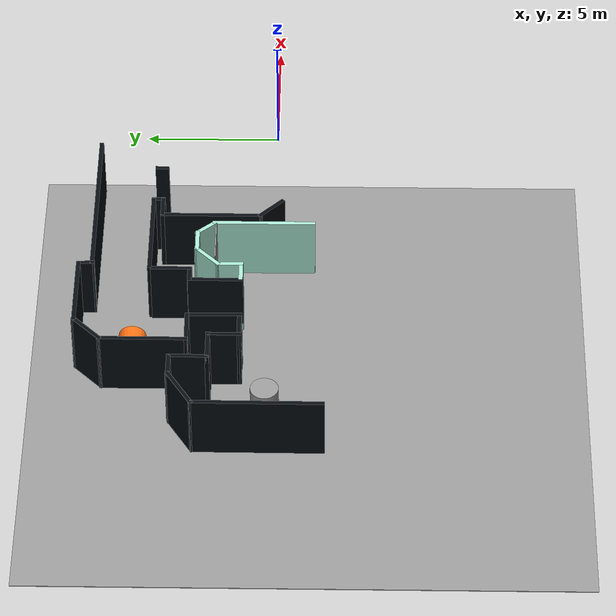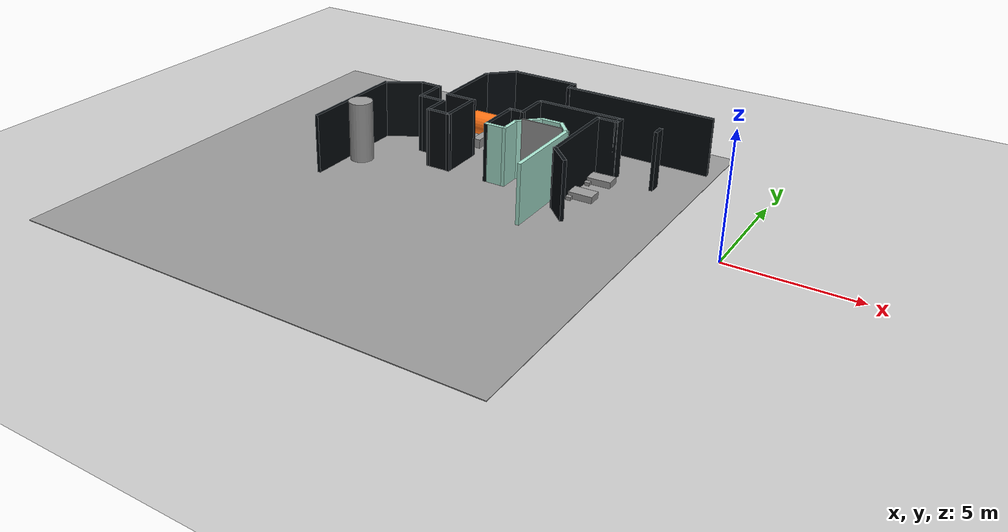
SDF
<sdf version="1.7">
 <world name="default">
  <model name="ground_plane">
   <static>1</static>
   <link name="link">
    <collision name="collision">
     <geometry><plane><normal>0 0 1</normal><size>100 100</size></plane></geometry>
     <surface><friction><ode><mu>100</mu><mu2>50</mu2></ode></friction></surface>
    </collision>
    <visual name="visual">
     <cast_shadows>0</cast_shadows>
     <geometry><plane><normal>0 0 1</normal><size>100 100</size></plane></geometry>
     <material>
      <script><uri>file://media/materials/scripts/gazebo.material</uri><name>Gazebo/Grey</name></script>
      <ambient>0.55 0.55 0.53 1</ambient>
      <diffuse>0.55 0.55 0.53 1</diffuse>
      <specular>0.08 0.08 0.08 1</specular>
      <emissive>0 0 0 1</emissive>
     </material>
    </visual>
   </link>
  </model>
  <model name="among_us_world">
   <pose>0.133216 -0.12311 0 0 -0 0</pose>
   <link name="Wall_101">
    <collision name="Wall_101_Collision">
     <geometry><box><size>3.75 0.15 2.5</size></box></geometry>
     <pose>0 0 1.25 0 -0 0</pose>
    </collision>
    <visual name="Wall_101_Visual">
     <pose>0 0 1.25 0 -0 0</pose>
     <geometry><box><size>3.75 0.15 2.5</size></box></geometry>
     <material>
      <script><uri>file://media/materials/scripts/gazebo.material</uri><name>Gazebo/Motorway</name></script>
      <ambient>0.025 0.045 0.06 1</ambient>
      <diffuse>0.025 0.045 0.06 1</diffuse>
      <specular>0.08 0.08 0.08 1</specular>
      <emissive>0 0 0 1</emissive>
     </material>
     <meta><layer>0</layer></meta>
    </visual>
    <pose>-6.98451 2.43054 0 0 -0 -1.5708</pose>
   </link>
   <link name="Wall_103">
    <collision name="Wall_103_Collision">
     <geometry><box><size>1.25 0.15 2.5</size></box></geometry>
     <pose>0 0 1.25 0 -0 0</pose>
    </collision>
    <visual name="Wall_103_Visual">
     <pose>0 0 1.25 0 -0 0</pose>
     <geometry><box><size>1.25 0.15 2.5</size></box></geometry>
     <material>
      <script><uri>file://media/materials/scripts/gazebo.material</uri><name>Gazebo/Motorway</name></script>
      <ambient>0.025 0.045 0.06 1</ambient>
      <diffuse>0.025 0.045 0.06 1</diffuse>
      <specular>0.08 0.08 0.08 1</specular>
      <emissive>0 0 0 1</emissive>
     </material>
     <meta><layer>0</layer></meta>
    </visual>
    <pose>-6.5956 0.241636 0 0 -0 -0.785398</pose>
   </link>
   <link name="Wall_110">
    <collision name="Wall_110_Collision">
     <geometry><box><size>0.5 0.15 2.5</size></box></geometry>
     <pose>0 0 1.25 0 -0 0</pose>
    </collision>
    <visual name="Wall_110_Visual">
     <pose>0 0 1.25 0 -0 0</pose>
     <geometry><box><size>0.5 0.15 2.5</size></box></geometry>
     <material>
      <script><uri>file://media/materials/scripts/gazebo.material</uri><name>Gazebo/Motorway</name></script>
      <ambient>0.025 0.045 0.06 1</ambient>
      <diffuse>0.025 0.045 0.06 1</diffuse>
      <specular>0.08 0.08 0.08 1</specular>
      <emissive>0 0 0 1</emissive>
     </material>
     <meta><layer>0</layer></meta>
    </visual>
    <pose>-4.46462 4.33852 0 0 -0 1.5708</pose>
   </link>
   <link name="Wall_169">
    <collision name="Wall_169_Collision">
     <geometry><box><size>3.75 0.15 2.5</size></box></geometry>
     <pose>0 0 1.25 0 -0 0</pose>
    </collision>
    <visual name="Wall_169_Visual">
     <pose>0 0 1.25 0 -0 0</pose>
     <geometry><box><size>3.75 0.15 2.5</size></box></geometry>
     <material>
      <script><uri>file://media/materials/scripts/gazebo.material</uri><name>Gazebo/Motorway</name></script>
      <ambient>0.66 0.90 0.82 1</ambient>
      <diffuse>0.66 0.90 0.82 1</diffuse>
      <specular>0.08 0.08 0.08 1</specular>
      <emissive>0 0 0 1</emissive>
     </material>
     <meta><layer>0</layer></meta>
    </visual>
    <pose>-7.39091 0.495094 0 0 -0 1.5708</pose>
   </link>
   <link name="Wall_170">
    <collision name="Wall_170_Collision">
     <geometry><box><size>0.93677 0.15 2.5</size></box></geometry>
     <pose>0 0 1.25 0 -0 0</pose>
    </collision>
    <visual name="Wall_170_Visual">
     <pose>0 0 1.25 0 -0 0</pose>
     <geometry><box><size>0.93677 0.15 2.5</size></box></geometry>
     <material>
      <script><uri>file://media/materials/scripts/gazebo.material</uri><name>Gazebo/Motorway</name></script>
      <ambient>0.66 0.90 0.82 1</ambient>
      <diffuse>0.66 0.90 0.82 1</diffuse>
      <specular>0.08 0.08 0.08 1</specular>
      <emissive>0 0 0 1</emissive>
     </material>
     <meta><layer>0</layer></meta>
    </visual>
    <pose>-7.66031 2.59561 0 0 -0 2.2722</pose>
   </link>
   <link name="Wall_171">
    <collision name="Wall_171_Collision">
     <geometry><box><size>1 0.15 2.5</size></box></geometry>
     <pose>0 0 1.25 0 -0 0</pose>
    </collision>
    <visual name="Wall_171_Visual">
     <pose>0 0 1.25 0 -0 0</pose>
     <geometry><box><size>1 0.15 2.5</size></box></geometry>
     <material>
      <script><uri>file://media/materials/scripts/gazebo.material</uri><name>Gazebo/Motorway</name></script>
      <ambient>0.66 0.90 0.82 1</ambient>
      <diffuse>0.66 0.90 0.82 1</diffuse>
      <specular>0.08 0.08 0.08 1</specular>
      <emissive>0 0 0 1</emissive>
     </material>
     <meta><layer>0</layer></meta>
    </visual>
    <pose>-8.33916 2.89614 0 0 -0 3.14159</pose>
   </link>
   <link name="Wall_172">
    <collision name="Wall_172_Collision">
     <geometry><box><size>1.25 0.15 2.5</size></box></geometry>
     <pose>0 0 1.25 0 -0 0</pose>
    </collision>
    <visual name="Wall_172_Visual">
     <pose>0 0 1.25 0 -0 0</pose>
     <geometry><box><size>1.25 0.15 2.5</size></box></geometry>
     <material>
      <script><uri>file://media/materials/scripts/gazebo.material</uri><name>Gazebo/Motorway</name></script>
      <ambient>0.66 0.90 0.82 1</ambient>
      <diffuse>0.66 0.90 0.82 1</diffuse>
      <specular>0.08 0.08 0.08 1</specular>
      <emissive>0 0 0 1</emissive>
     </material>
     <meta><layer>0</layer></meta>
    </visual>
    <pose>-9.15307 2.50723 0 0 -0 -2.35619</pose>
   </link>
   <link name="Wall_173">
    <collision name="Wall_173_Collision">
     <geometry><box><size>1 0.15 2.5</size></box></geometry>
     <pose>0 0 1.25 0 -0 0</pose>
    </collision>
    <visual name="Wall_173_Visual">
     <pose>0 0 1.25 0 -0 0</pose>
     <geometry><box><size>1 0.15 2.5</size></box></geometry>
     <material>
      <script><uri>file://media/materials/scripts/gazebo.material</uri><name>Gazebo/Motorway</name></script>
      <ambient>0.66 0.90 0.82 1</ambient>
      <diffuse>0.66 0.90 0.82 1</diffuse>
      <specular>0.08 0.08 0.08 1</specular>
      <emissive>0 0 0 1</emissive>
     </material>
     <meta><layer>0</layer></meta>
    </visual>
    <pose>-9.54198 1.69332 0 0 -0 -1.5708</pose>
   </link>
   <link name="Wall_174">
    <collision name="Wall_174_Collision">
     <geometry><box><size>0.969112 0.15 2.5</size></box></geometry>
     <pose>0 0 1.25 0 -0 0</pose>
    </collision>
    <visual name="Wall_174_Visual">
     <pose>0 0 1.25 0 -0 0</pose>
     <geometry><box><size>0.969112 0.15 2.5</size></box></geometry>
     <material>
      <script><uri>file://media/materials/scripts/gazebo.material</uri><name>Gazebo/Motorway</name></script>
      <ambient>0.66 0.90 0.82 1</ambient>
      <diffuse>0.66 0.90 0.82 1</diffuse>
      <specular>0.08 0.08 0.08 1</specular>
      <emissive>0 0 0 1</emissive>
     </material>
     <meta><layer>0</layer></meta>
    </visual>
    <pose>-9.95154 1.26832 0 0 -0 -3.14159</pose>
   </link>
   <link name="Wall_175">
    <collision name="Wall_175_Collision">
     <geometry><box><size>2 0.15 2.5</size></box></geometry>
     <pose>0 0 1.25 0 -0 0</pose>
    </collision>
    <visual name="Wall_175_Visual">
     <pose>0 0 1.25 0 -0 0</pose>
     <geometry><box><size>2 0.15 2.5</size></box></geometry>
     <material>
      <script><uri>file://media/materials/scripts/gazebo.material</uri><name>Gazebo/Motorway</name></script>
      <ambient>0.025 0.045 0.06 1</ambient>
      <diffuse>0.025 0.045 0.06 1</diffuse>
      <specular>0.08 0.08 0.08 1</specular>
      <emissive>0 0 0 1</emissive>
     </material>
     <meta><layer>0</layer></meta>
    </visual>
    <pose>-10.3611 2.17994 0 0 -0 1.5708</pose>
   </link>
   <link name="Wall_176">
    <collision name="Wall_176_Collision">
     <geometry><box><size>0.719112 0.15 2.5</size></box></geometry>
     <pose>0 0 1.25 0 -0 0</pose>
    </collision>
    <visual name="Wall_176_Visual">
     <pose>0 0 1.25 0 -0 0</pose>
     <geometry><box><size>0.719112 0.15 2.5</size></box></geometry>
     <material>
      <script><uri>file://media/materials/scripts/gazebo.material</uri><name>Gazebo/Motorway</name></script>
      <ambient>0.025 0.045 0.06 1</ambient>
      <diffuse>0.025 0.045 0.06 1</diffuse>
      <specular>0.08 0.08 0.08 1</specular>
      <emissive>0 0 0 1</emissive>
     </material>
     <meta><layer>0</layer></meta>
    </visual>
    <pose>-10.0765 3.11832 0 0 -0 0</pose>
   </link>
   <link name="Wall_177">
    <collision name="Wall_177_Collision">
     <geometry><box><size>1.5 0.15 2.5</size></box></geometry>
     <pose>0 0 1.25 0 -0 0</pose>
    </collision>
    <visual name="Wall_177_Visual">
     <pose>0 0 1.25 0 -0 0</pose>
     <geometry><box><size>1.5 0.15 2.5</size></box></geometry>
     <material>
      <script><uri>file://media/materials/scripts/gazebo.material</uri><name>Gazebo/Motorway</name></script>
      <ambient>0.025 0.045 0.06 1</ambient>
      <diffuse>0.025 0.045 0.06 1</diffuse>
      <specular>0.08 0.08 0.08 1</specular>
      <emissive>0 0 0 1</emissive>
     </material>
     <meta><layer>0</layer></meta>
    </visual>
    <pose>-9.79198 3.79332 0 0 -0 1.5708</pose>
   </link>
   <link name="Wall_208">
    <collision name="Wall_208_Collision">
     <geometry><box><size>1.25 0.15 2.5</size></box></geometry>
     <pose>0 0 1.25 0 -0 0</pose>
    </collision>
    <visual name="Wall_208_Visual">
     <pose>0 0 1.25 0 -0 0</pose>
     <geometry><box><size>1.25 0.15 2.5</size></box></geometry>
     <material>
      <script><uri>file://media/materials/scripts/gazebo.material</uri><name>Gazebo/Motorway</name></script>
      <ambient>0.025 0.045 0.06 1</ambient>
      <diffuse>0.025 0.045 0.06 1</diffuse>
      <specular>0.08 0.08 0.08 1</specular>
      <emissive>0 0 0 1</emissive>
     </material>
     <meta><layer>0</layer></meta>
    </visual>
    <pose>-13.1077 1.80265 0 0 -0 -1.57068</pose>
   </link>
   <link name="Wall_209">
    <collision name="Wall_209_Collision">
     <geometry><box><size>1.11978 0.15 2.5</size></box></geometry>
     <pose>0 0 1.25 0 -0 0</pose>
    </collision>
    <visual name="Wall_209_Visual">
     <pose>0 0 1.25 0 -0 0</pose>
     <geometry><box><size>1.11978 0.15 2.5</size></box></geometry>
     <material>
      <script><uri>file://media/materials/scripts/gazebo.material</uri><name>Gazebo/Motorway</name></script>
      <ambient>0.025 0.045 0.06 1</ambient>
      <diffuse>0.025 0.045 0.06 1</diffuse>
      <specular>0.08 0.08 0.08 1</specular>
      <emissive>0 0 0 1</emissive>
     </material>
     <meta><layer>0</layer></meta>
    </visual>
    <pose>-12.6228 1.25736 0 0 -0 0.009865</pose>
   </link>
   <link name="Wall_31">
    <collision name="Wall_31_Collision">
     <geometry><box><size>6.5 0.15 2.5</size></box></geometry>
     <pose>0 0 1.25 0 -0 0</pose>
    </collision>
    <visual name="Wall_31_Visual">
     <pose>0 0 1.25 0 -0 0</pose>
     <geometry><box><size>6.5 0.15 2.5</size></box></geometry>
     <material>
      <script><uri>file://media/materials/scripts/gazebo.material</uri><name>Gazebo/Motorway</name></script>
      <ambient>0.025 0.045 0.06 1</ambient>
      <diffuse>0.025 0.045 0.06 1</diffuse>
      <specular>0.08 0.08 0.08 1</specular>
      <emissive>0 0 0 1</emissive>
     </material>
     <meta><layer>0</layer></meta>
    </visual>
    <pose>-6.36249 6.66662 0 0 -0 3.14159</pose>
   </link>
   <link name="Wall_32">
    <collision name="Wall_32_Collision">
     <geometry><box><size>0.656345 0.15 2.5</size></box></geometry>
     <pose>0 0 1.25 0 -0 0</pose>
    </collision>
    <visual name="Wall_32_Visual">
     <pose>0 0 1.25 0 -0 0</pose>
     <geometry><box><size>0.656345 0.15 2.5</size></box></geometry>
     <material>
      <script><uri>file://media/materials/scripts/gazebo.material</uri><name>Gazebo/Motorway</name></script>
      <ambient>0.025 0.045 0.06 1</ambient>
      <diffuse>0.025 0.045 0.06 1</diffuse>
      <specular>0.08 0.08 0.08 1</specular>
      <emissive>0 0 0 1</emissive>
     </material>
     <meta><layer>0</layer></meta>
    </visual>
    <pose>-9.54527 6.90412 0 0 -0 1.60153</pose>
   </link>
   <link name="Wall_33">
    <collision name="Wall_33_Collision">
     <geometry><box><size>3 0.15 2.5</size></box></geometry>
     <pose>0 0 1.25 0 -0 0</pose>
    </collision>
    <visual name="Wall_33_Visual">
     <pose>0 0 1.25 0 -0 0</pose>
     <geometry><box><size>3 0.15 2.5</size></box></geometry>
     <material>
      <script><uri>file://media/materials/scripts/gazebo.material</uri><name>Gazebo/Motorway</name></script>
      <ambient>0.025 0.045 0.06 1</ambient>
      <diffuse>0.025 0.045 0.06 1</diffuse>
      <specular>0.08 0.08 0.08 1</specular>
      <emissive>0 0 0 1</emissive>
     </material>
     <meta><layer>0</layer></meta>
    </visual>
    <pose>-10.978 7.15717 0 0 -0 3.14159</pose>
   </link>
   <link name="Wall_34">
    <collision name="Wall_34_Collision">
     <geometry><box><size>1.5 0.15 2.5</size></box></geometry>
     <pose>0 0 1.25 0 -0 0</pose>
    </collision>
    <visual name="Wall_34_Visual">
     <pose>0 0 1.25 0 -0 0</pose>
     <geometry><box><size>1.5 0.15 2.5</size></box></geometry>
     <material>
      <script><uri>file://media/materials/scripts/gazebo.material</uri><name>Gazebo/Motorway</name></script>
      <ambient>0.025 0.045 0.06 1</ambient>
      <diffuse>0.025 0.045 0.06 1</diffuse>
      <specular>0.08 0.08 0.08 1</specular>
      <emissive>0 0 0 1</emissive>
     </material>
     <meta><layer>0</layer></meta>
    </visual>
    <pose>-12.8803 6.67987 0 0 -0 -2.35619</pose>
   </link>
   <link name="Wall_35">
    <collision name="Wall_35_Collision">
     <geometry><box><size>3.21889 0.15 2.5</size></box></geometry>
     <pose>0 0 1.25 0 -0 0</pose>
    </collision>
    <visual name="Wall_35_Visual">
     <pose>0 0 1.25 0 -0 0</pose>
     <geometry><box><size>3.21889 0.15 2.5</size></box></geometry>
     <material>
      <script><uri>file://media/materials/scripts/gazebo.material</uri><name>Gazebo/Motorway</name></script>
      <ambient>0.025 0.045 0.06 1</ambient>
      <diffuse>0.025 0.045 0.06 1</diffuse>
      <specular>0.08 0.08 0.08 1</specular>
      <emissive>0 0 0 1</emissive>
     </material>
     <meta><layer>0</layer></meta>
    </visual>
    <pose>-13.3576 4.66813 0 0 -0 -1.5708</pose>
   </link>
   <link name="Wall_36">
    <collision name="Wall_36_Collision">
     <geometry><box><size>1.35468 0.15 2.5</size></box></geometry>
     <pose>0 0 1.25 0 -0 0</pose>
    </collision>
    <visual name="Wall_36_Visual">
     <pose>0 0 1.25 0 -0 0</pose>
     <geometry><box><size>1.35468 0.15 2.5</size></box></geometry>
     <material>
      <script><uri>file://media/materials/scripts/gazebo.material</uri><name>Gazebo/Motorway</name></script>
      <ambient>0.025 0.045 0.06 1</ambient>
      <diffuse>0.025 0.045 0.06 1</diffuse>
      <specular>0.08 0.08 0.08 1</specular>
      <emissive>0 0 0 1</emissive>
     </material>
     <meta><layer>0</layer></meta>
    </visual>
    <pose>-12.7556 3.12401 0 0 -0 0.009756</pose>
   </link>
   <link name="Wall_37">
    <collision name="Wall_37_Collision">
     <geometry><box><size>2.0178 0.15 2.5</size></box></geometry>
     <pose>0 0 1.25 0 -0 0</pose>
    </collision>
    <visual name="Wall_37_Visual">
     <pose>0 0 1.25 0 -0 0</pose>
     <geometry><box><size>2.0178 0.15 2.5</size></box></geometry>
     <material>
      <script><uri>file://media/materials/scripts/gazebo.material</uri><name>Gazebo/Motorway</name></script>
      <ambient>0.025 0.045 0.06 1</ambient>
      <diffuse>0.025 0.045 0.06 1</diffuse>
      <specular>0.08 0.08 0.08 1</specular>
      <emissive>0 0 0 1</emissive>
     </material>
     <meta><layer>0</layer></meta>
    </visual>
    <pose>-12.1457 2.18046 0 0 -0 -1.56247</pose>
   </link>
   <link name="Wall_40">
    <collision name="Wall_40_Collision">
     <geometry><box><size>1.25 0.15 2.5</size></box></geometry>
     <pose>0 0 1.25 0 -0 0</pose>
    </collision>
    <visual name="Wall_40_Visual">
     <pose>0 0 1.25 0 -0 0</pose>
     <geometry><box><size>1.25 0.15 2.5</size></box></geometry>
     <material>
      <script><uri>file://media/materials/scripts/gazebo.material</uri><name>Gazebo/Motorway</name></script>
      <ambient>0.025 0.045 0.06 1</ambient>
      <diffuse>0.025 0.045 0.06 1</diffuse>
      <specular>0.08 0.08 0.08 1</specular>
      <emissive>0 0 0 1</emissive>
     </material>
     <meta><layer>0</layer></meta>
    </visual>
    <pose>-13.6578 2.35272 0 0 -0 3.14159</pose>
   </link>
   <link name="Wall_43">
    <collision name="Wall_43_Collision">
     <geometry><box><size>1.5 0.15 2.5</size></box></geometry>
     <pose>0 0 1.25 0 -0 0</pose>
    </collision>
    <visual name="Wall_43_Visual">
     <pose>0 0 1.25 0 -0 0</pose>
     <geometry><box><size>1.5 0.15 2.5</size></box></geometry>
     <material>
      <script><uri>file://media/materials/scripts/gazebo.material</uri><name>Gazebo/Motorway</name></script>
      <ambient>0.025 0.045 0.06 1</ambient>
      <diffuse>0.025 0.045 0.06 1</diffuse>
      <specular>0.08 0.08 0.08 1</specular>
      <emissive>0 0 0 1</emissive>
     </material>
     <meta><layer>0</layer></meta>
    </visual>
    <pose>-14.2078 3.02772 0 0 -0 1.5708</pose>
   </link>
   <link name="Wall_44">
    <collision name="Wall_44_Collision">
     <geometry><box><size>1 0.15 2.5</size></box></geometry>
     <pose>0 0 1.25 0 -0 0</pose>
    </collision>
    <visual name="Wall_44_Visual">
     <pose>0 0 1.25 0 -0 0</pose>
     <geometry><box><size>1 0.15 2.5</size></box></geometry>
     <material>
      <script><uri>file://media/materials/scripts/gazebo.material</uri><name>Gazebo/Motorway</name></script>
      <ambient>0.025 0.045 0.06 1</ambient>
      <diffuse>0.025 0.045 0.06 1</diffuse>
      <specular>0.08 0.08 0.08 1</specular>
      <emissive>0 0 0 1</emissive>
     </material>
     <meta><layer>0</layer></meta>
    </visual>
    <pose>-14.6328 3.70272 0 0 -0 3.14159</pose>
   </link>
   <link name="Wall_45">
    <collision name="Wall_45_Collision">
     <geometry><box><size>1.76072 0.15 2.5</size></box></geometry>
     <pose>0 0 1.25 0 -0 0</pose>
    </collision>
    <visual name="Wall_45_Visual">
     <pose>0 0 1.25 0 -0 0</pose>
     <geometry><box><size>1.76072 0.15 2.5</size></box></geometry>
     <material>
      <script><uri>file://media/materials/scripts/gazebo.material</uri><name>Gazebo/Motorway</name></script>
      <ambient>0.025 0.045 0.06 1</ambient>
      <diffuse>0.025 0.045 0.06 1</diffuse>
      <specular>0.08 0.08 0.08 1</specular>
      <emissive>0 0 0 1</emissive>
     </material>
     <meta><layer>0</layer></meta>
    </visual>
    <pose>-15.7428 3.27922 0 0 -0 -2.58786</pose>
   </link>
   <link name="Wall_46">
    <collision name="Wall_46_Collision">
     <geometry><box><size>4.75003 0.15 2.5</size></box></geometry>
     <pose>0 0 1.25 0 -0 0</pose>
    </collision>
    <visual name="Wall_46_Visual">
     <pose>0 0 1.25 0 -0 0</pose>
     <geometry><box><size>4.75003 0.15 2.5</size></box></geometry>
     <material>
      <script><uri>file://media/materials/scripts/gazebo.material</uri><name>Gazebo/Motorway</name></script>
      <ambient>0.025 0.045 0.06 1</ambient>
      <diffuse>0.025 0.045 0.06 1</diffuse>
      <specular>0.08 0.08 0.08 1</specular>
      <emissive>0 0 0 1</emissive>
     </material>
     <meta><layer>0</layer></meta>
    </visual>
    <pose>-16.4358 0.555717 0 0 -0 -1.57428</pose>
   </link>
   <link name="Wall_96">
    <collision name="Wall_96_Collision">
     <geometry><box><size>3.70441 0.15 2.5</size></box></geometry>
     <pose>0 0 1.25 0 -0 0</pose>
    </collision>
    <visual name="Wall_96_Visual">
     <pose>0 0 1.25 0 -0 0</pose>
     <geometry><box><size>3.70441 0.15 2.5</size></box></geometry>
     <material>
      <script><uri>file://media/materials/scripts/gazebo.material</uri><name>Gazebo/Motorway</name></script>
      <ambient>0.025 0.045 0.06 1</ambient>
      <diffuse>0.025 0.045 0.06 1</diffuse>
      <specular>0.08 0.08 0.08 1</specular>
      <emissive>0 0 0 1</emissive>
     </material>
     <meta><layer>0</layer></meta>
    </visual>
    <pose>-7.9573 4.58054 0 0 -0 0</pose>
   </link>
   <link name="Wall_97">
    <collision name="Wall_97_Collision">
     <geometry><box><size>0.5 0.15 2.5</size></box></geometry>
     <pose>0 0 1.25 0 -0 0</pose>
    </collision>
    <visual name="Wall_97_Visual">
     <pose>0 0 1.25 0 -0 0</pose>
     <geometry><box><size>0.5 0.15 2.5</size></box></geometry>
     <material>
      <script><uri>file://media/materials/scripts/gazebo.material</uri><name>Gazebo/Motorway</name></script>
      <ambient>0.025 0.045 0.06 1</ambient>
      <diffuse>0.025 0.045 0.06 1</diffuse>
      <specular>0.08 0.08 0.08 1</specular>
      <emissive>0 0 0 1</emissive>
     </material>
     <meta><layer>0</layer></meta>
    </visual>
    <pose>-6.16454 4.40555 0 0 -0 -1.5708</pose>
   </link>
   <link name="Wall_98">
    <collision name="Wall_98_Collision">
     <geometry><box><size>0.954414 0.15 2.5</size></box></geometry>
     <pose>0 0 1.25 0 -0 0</pose>
    </collision>
    <visual name="Wall_98_Visual">
     <pose>0 0 1.25 0 -0 0</pose>
     <geometry><box><size>0.954414 0.15 2.5</size></box></geometry>
     <material>
      <script><uri>file://media/materials/scripts/gazebo.material</uri><name>Gazebo/Motorway</name></script>
      <ambient>0.025 0.045 0.06 1</ambient>
      <diffuse>0.025 0.045 0.06 1</diffuse>
      <specular>0.08 0.08 0.08 1</specular>
      <emissive>0 0 0 1</emissive>
     </material>
     <meta><layer>0</layer></meta>
    </visual>
    <pose>-6.5823 4.23055 0 0 -0 3.14159</pose>
   </link>
   <static>1</static>
  </model>
  <model name="drc_practice_white_jersey_barrier_clone_clone">
   <static>1</static>
   <link name="link">
    <visual name="visual">
     <geometry><box><size>1.2 0.35 0.8</size></box></geometry>
     <material>
      <script><uri>file://media/materials/scripts/gazebo.material</uri><name>Gazebo/Grey</name></script>
      <ambient>0.025 0.045 0.06 1</ambient>
      <diffuse>0.025 0.045 0.06 1</diffuse>
      <specular>0.08 0.08 0.08 1</specular>
      <emissive>0 0 0 1</emissive>
     </material>
    </visual>
    <collision name="collision"><geometry><box><size>1.2 0.35 0.8</size></box></geometry></collision>
   </link>
   <pose>-12.2907 4.36673 0 0 -0 1.57</pose>
  </model>
  <model name="drc_practice_white_jersey_barrier_clone_clone_0">
   <static>1</static>
   <link name="link">
    <visual name="visual">
     <geometry><box><size>1.2 0.35 0.8</size></box></geometry>
     <material>
      <script><uri>file://media/materials/scripts/gazebo.material</uri><name>Gazebo/Grey</name></script>
      <ambient>0.025 0.045 0.06 1</ambient>
      <diffuse>0.025 0.045 0.06 1</diffuse>
      <specular>0.08 0.08 0.08 1</specular>
      <emissive>0 0 0 1</emissive>
     </material>
    </visual>
    <collision name="collision"><geometry><box><size>1.2 0.35 0.8</size></box></geometry></collision>
   </link>
   <pose>-12.2842 5.72724 0 0 -0 1.57</pose>
  </model>
  <model name="control_console_clone_clone_0">
   <static>1</static>
   <link name="link">
    <visual name="visual">
     <geometry><box><size>0.9 0.45 0.7</size></box></geometry>
     <material>
      <script><uri>file://media/materials/scripts/gazebo.material</uri><name>Gazebo/Grey</name></script>
      <ambient>0.42 0.43 0.42 1</ambient>
      <diffuse>0.42 0.43 0.42 1</diffuse>
      <specular>0.08 0.08 0.08 1</specular>
      <emissive>0 0 0 1</emissive>
     </material>
    </visual>
    <visual name="backvisual">
     <pose>0 0.29388 1.30113 0 -0 0</pose>
     <geometry><box><size>1.78 0.05 2.60225</size></box></geometry>
     <material>
      <script><uri>file://media/materials/scripts/gazebo.material</uri><name>Gazebo/Grey</name></script>
      <ambient>0.42 0.43 0.42 1</ambient>
      <diffuse>0.42 0.43 0.42 1</diffuse>
      <specular>0.08 0.08 0.08 1</specular>
      <emissive>0 0 0 1</emissive>
     </material>
    </visual>
    <collision name="back_collision">
     <pose>0 0.29388 1.30113 0 -0 0</pose>
     <geometry><box><size>1.78 0.05 2.60225</size></box></geometry>
    </collision>
    <collision name="base_collision">
     <pose>0 -0.14669 0.4128 0 -0 0</pose>
     <geometry><box><size>1.78872 0.97373 0.8256</size></box></geometry>
    </collision>
    <collision name="mid_collision">
     <pose>0 0.04268 1.48248 0 -0 0</pose>
     <geometry><box><size>1.70162 0.51806 1.5</size></box></geometry>
    </collision>
    <collision name="top_collision">
     <pose>0 -0.15709 2.31203 0 -0 0</pose>
     <geometry><box><size>1.78872 0.95292 0.62632</size></box></geometry>
    </collision>
    <collision name="panel_collision">
     <pose>0 -0.36311 0.90329 0.428775 -0 0</pose>
     <geometry><box><size>1.33522 0.550273 0.1</size></box></geometry>
    </collision>
    <collision name="left_lower_shoulder_collision">
     <pose>-0.7435 -0.19848 0.87 0.520485 -0 0</pose>
     <geometry><box><size>0.30172 0.7 0.5</size></box></geometry>
    </collision>
    <collision name="right_lower_shoulder_collision">
     <pose>0.7435 -0.19848 0.87 0.520485 -0 0</pose>
     <geometry><box><size>0.30172 0.7 0.5</size></box></geometry>
    </collision>
    <collision name="left_upper_shoulder_collision">
     <pose>-0.7435 -0.19152 1.99244 -0.620645 0 0</pose>
     <geometry><box><size>0.30172 0.7 0.5</size></box></geometry>
    </collision>
    <collision name="right_upper_shoulder_collision">
     <pose>0.7435 -0.19152 1.99244 -0.620645 0 0</pose>
     <geometry><box><size>0.30172 0.7 0.5</size></box></geometry>
    </collision>
   </link>
   <pose>-8.29576 1.81112 0 0 -0 7.5e-05</pose>
  </model>
  <model name="orange_cylinder_clone">
   <link name="link_0">
    <inertial>
     <mass>1</mass>
     <inertia><ixx>0.145833</ixx><ixy>0</ixy><ixz>0</ixz><iyy>0.145833</iyy><iyz>0</iyz><izz>0.125</izz></inertia>
    </inertial>
    <visual name="visual">
     <geometry><cylinder><radius>0.5</radius><length>1.88443</length></cylinder></geometry>
     <material>
      <lighting>1</lighting>
      <script><uri>file://media/materials/scripts/gazebo.material</uri><name>Gazebo/Grey</name></script>
      <shader type="pixel"><normal_map>__default__</normal_map></shader>
      <ambient>1.0 0.45 0.08 1</ambient>
      <diffuse>1.0 0.45 0.08 1</diffuse>
      <specular>0.08 0.08 0.08 1</specular>
      <emissive>0 0 0 1</emissive>
     </material>
    </visual>
    <collision name="collision">
     <geometry><cylinder><radius>0.5</radius><length>1.88443</length></cylinder></geometry>
     <surface>
      <friction>
       <ode><mu>1</mu><mu2>1</mu2><fdir1>0 0 0</fdir1><slip1>0</slip1><slip2>0</slip2></ode>
       <torsional>
        <coefficient>1</coefficient>
        <patch_radius>0</patch_radius>
        <surface_radius>0</surface_radius>
        <use_patch_radius>1</use_patch_radius>
        <ode><slip>0</slip></ode>
       </torsional>
      </friction>
      <bounce><restitution_coefficient>0</restitution_coefficient><threshold>1e+06</threshold></bounce>
      <contact>
       <collide_without_contact>0</collide_without_contact>
       <collide_without_contact_bitmask>1</collide_without_contact_bitmask>
       <collide_bitmask>1</collide_bitmask>
       <ode>
        <soft_cfm>0</soft_cfm>
        <soft_erp>0.2</soft_erp>
        <kp>1e+13</kp>
        <kd>1</kd>
        <max_vel>0.01</max_vel>
        <min_depth>0</min_depth>
       </ode>
       <bullet>
        <split_impulse>1</split_impulse>
        <split_impulse_penetration_threshold>-0.01</split_impulse_penetration_threshold>
        <soft_cfm>0</soft_cfm>
        <soft_erp>0.2</soft_erp>
        <kp>1e+13</kp>
        <kd>1</kd>
       </bullet>
      </contact>
     </surface>
    </collision>
   </link>
   <static>0</static>
   <pose>-12.1912 5.04645 0.590071 -1.5708 1.55143 -1.57632</pose>
  </model>
  <model name="asphalt_plane">
   <static>1</static>
   <link name="link">
    <collision name="collision"><geometry><box><size>20 20 0.1</size></box></geometry></collision>
    <visual name="visual">
     <cast_shadows>0</cast_shadows>
     <geometry><box><size>20 20 0.1</size></box></geometry>
     <material>
      <script><uri>file://media/materials/scripts/gazebo.material</uri><name>Gazebo/Grey</name></script>
      <ambient>0.23 0.23 0.22 1</ambient>
      <diffuse>0.23 0.23 0.22 1</diffuse>
      <specular>0.08 0.08 0.08 1</specular>
      <emissive>0 0 0 1</emissive>
     </material>
    </visual>
   </link>
   <pose>-12.6134 -1.31009 -0.045514 0 -0 0</pose>
  </model>
  <model name="bed">
   <link name="link_1">
    <inertial>
     <mass>0.166557</mass>
     <inertia>
      <ixx>0.00618823</ixx>
      <ixy>0</ixy>
      <ixz>0</ixz>
      <iyy>0.0149173</iyy>
      <iyz>0</iyz>
      <izz>0.0190304</izz>
     </inertia>
    </inertial>
    <pose>0.268517 -0.007523 0.053425 0 -0 0</pose>
    <visual name="visual">
     <geometry><box><size>1 0.609172 0.273416</size></box></geometry>
     <material>
      <lighting>1</lighting>
      <script><uri>file://media/materials/scripts/gazebo.material</uri><name>Gazebo/Grey</name></script>
      <shader type="pixel"><normal_map>__default__</normal_map></shader>
      <ambient>0.42 0.43 0.42 1</ambient>
      <diffuse>0.42 0.43 0.42 1</diffuse>
      <specular>0.08 0.08 0.08 1</specular>
      <emissive>0 0 0 1</emissive>
     </material>
    </visual>
    <collision name="collision">
     <geometry><box><size>1 0.609172 0.273416</size></box></geometry>
     <surface>
      <friction>
       <ode><mu>1</mu><mu2>1</mu2><fdir1>0 0 0</fdir1><slip1>0</slip1><slip2>0</slip2></ode>
       <torsional>
        <coefficient>1</coefficient>
        <patch_radius>0</patch_radius>
        <surface_radius>0</surface_radius>
        <use_patch_radius>1</use_patch_radius>
        <ode><slip>0</slip></ode>
       </torsional>
      </friction>
      <bounce><restitution_coefficient>0</restitution_coefficient><threshold>1e+06</threshold></bounce>
      <contact>
       <collide_without_contact>0</collide_without_contact>
       <collide_without_contact_bitmask>1</collide_without_contact_bitmask>
       <collide_bitmask>1</collide_bitmask>
       <ode>
        <soft_cfm>0</soft_cfm>
        <soft_erp>0.2</soft_erp>
        <kp>1e+13</kp>
        <kd>1</kd>
        <max_vel>0.01</max_vel>
        <min_depth>0</min_depth>
       </ode>
       <bullet>
        <split_impulse>1</split_impulse>
        <split_impulse_penetration_threshold>-0.01</split_impulse_penetration_threshold>
        <soft_cfm>0</soft_cfm>
        <soft_erp>0.2</soft_erp>
        <kp>1e+13</kp>
        <kd>1</kd>
       </bullet>
      </contact>
     </surface>
    </collision>
   </link>
   <link name="link_2">
    <inertial>
     <mass>0.00661892</mass>
     <inertia>
      <ixx>3.651e-05</ixx>
      <ixy>0</ixy>
      <ixz>0</ixz>
      <iyy>3.722e-05</iyy>
      <iyz>0</iyz>
      <izz>4.631e-05</izz>
     </inertia>
    </inertial>
    <pose>-0.144333 -0.400103 -0.02691 0 -0 0</pose>
    <visual name="visual">
     <geometry><box><size>0.206441 0.203314 0.157681</size></box></geometry>
     <material>
      <lighting>1</lighting>
      <script><uri>file://media/materials/scripts/gazebo.material</uri><name>Gazebo/Grey</name></script>
      <shader type="pixel"><normal_map>__default__</normal_map></shader>
      <ambient>0.42 0.43 0.42 1</ambient>
      <diffuse>0.42 0.43 0.42 1</diffuse>
      <specular>0.08 0.08 0.08 1</specular>
      <emissive>0 0 0 1</emissive>
     </material>
    </visual>
    <collision name="collision">
     <geometry><box><size>0.206441 0.203314 0.157681</size></box></geometry>
     <surface>
      <friction>
       <ode><mu>1</mu><mu2>1</mu2><fdir1>0 0 0</fdir1><slip1>0</slip1><slip2>0</slip2></ode>
       <torsional>
        <coefficient>1</coefficient>
        <patch_radius>0</patch_radius>
        <surface_radius>0</surface_radius>
        <use_patch_radius>1</use_patch_radius>
        <ode><slip>0</slip></ode>
       </torsional>
      </friction>
      <bounce><restitution_coefficient>0</restitution_coefficient><threshold>1e+06</threshold></bounce>
      <contact>
       <collide_without_contact>0</collide_without_contact>
       <collide_without_contact_bitmask>1</collide_without_contact_bitmask>
       <collide_bitmask>1</collide_bitmask>
       <ode>
        <soft_cfm>0</soft_cfm>
        <soft_erp>0.2</soft_erp>
        <kp>1e+13</kp>
        <kd>1</kd>
        <max_vel>0.01</max_vel>
        <min_depth>0</min_depth>
       </ode>
       <bullet>
        <split_impulse>1</split_impulse>
        <split_impulse_penetration_threshold>-0.01</split_impulse_penetration_threshold>
        <soft_cfm>0</soft_cfm>
        <soft_erp>0.2</soft_erp>
        <kp>1e+13</kp>
        <kd>1</kd>
       </bullet>
      </contact>
     </surface>
    </collision>
   </link>
   <link name="link_2_clone">
    <inertial>
     <mass>0.00661892</mass>
     <inertia>
      <ixx>3.651e-05</ixx>
      <ixy>0</ixy>
      <ixz>0</ixz>
      <iyy>3.722e-05</iyy>
      <iyz>0</iyz>
      <izz>4.631e-05</izz>
     </inertia>
    </inertial>
    <pose>-0.124183 0.407627 -0.026515 0 -0 0</pose>
    <visual name="visual">
     <geometry><box><size>0.206441 0.203314 0.157681</size></box></geometry>
     <material>
      <lighting>1</lighting>
      <script><uri>file://media/materials/scripts/gazebo.material</uri><name>Gazebo/Grey</name></script>
      <shader type="pixel"><normal_map>__default__</normal_map></shader>
      <ambient>0.42 0.43 0.42 1</ambient>
      <diffuse>0.42 0.43 0.42 1</diffuse>
      <specular>0.08 0.08 0.08 1</specular>
      <emissive>0 0 0 1</emissive>
     </material>
    </visual>
    <collision name="collision">
     <geometry><box><size>0.206441 0.203314 0.157681</size></box></geometry>
     <surface>
      <friction>
       <ode><mu>1</mu><mu2>1</mu2><fdir1>0 0 0</fdir1><slip1>0</slip1><slip2>0</slip2></ode>
       <torsional>
        <coefficient>1</coefficient>
        <patch_radius>0</patch_radius>
        <surface_radius>0</surface_radius>
        <use_patch_radius>1</use_patch_radius>
        <ode><slip>0</slip></ode>
       </torsional>
      </friction>
      <bounce><restitution_coefficient>0</restitution_coefficient><threshold>1e+06</threshold></bounce>
      <contact>
       <collide_without_contact>0</collide_without_contact>
       <collide_without_contact_bitmask>1</collide_without_contact_bitmask>
       <collide_bitmask>1</collide_bitmask>
       <ode>
        <soft_cfm>0</soft_cfm>
        <soft_erp>0.2</soft_erp>
        <kp>1e+13</kp>
        <kd>1</kd>
        <max_vel>0.01</max_vel>
        <min_depth>0</min_depth>
       </ode>
       <bullet>
        <split_impulse>1</split_impulse>
        <split_impulse_penetration_threshold>-0.01</split_impulse_penetration_threshold>
        <soft_cfm>0</soft_cfm>
        <soft_erp>0.2</soft_erp>
        <kp>1e+13</kp>
        <kd>1</kd>
       </bullet>
      </contact>
     </surface>
    </collision>
   </link>
   <static>1</static>
   <pose>-6.50619 3.49112 0.093278 1.6e-05 -0 0.037709</pose>
  </model>
  <model name="bed_clone">
   <link name="link_1">
    <inertial>
     <mass>0.166557</mass>
     <inertia>
      <ixx>0.00618823</ixx>
      <ixy>0</ixy>
      <ixz>0</ixz>
      <iyy>0.0149173</iyy>
      <iyz>0</iyz>
      <izz>0.0190304</izz>
     </inertia>
    </inertial>
    <pose>0.268517 -0.007523 0.053425 0 -0 0</pose>
    <visual name="visual">
     <geometry><box><size>1 0.609172 0.273416</size></box></geometry>
     <material>
      <lighting>1</lighting>
      <script><uri>file://media/materials/scripts/gazebo.material</uri><name>Gazebo/Grey</name></script>
      <shader type="pixel"><normal_map>__default__</normal_map></shader>
      <ambient>0.42 0.43 0.42 1</ambient>
      <diffuse>0.42 0.43 0.42 1</diffuse>
      <specular>0.08 0.08 0.08 1</specular>
      <emissive>0 0 0 1</emissive>
     </material>
    </visual>
    <collision name="collision">
     <geometry><box><size>1 0.609172 0.273416</size></box></geometry>
     <surface>
      <friction>
       <ode><mu>1</mu><mu2>1</mu2><fdir1>0 0 0</fdir1><slip1>0</slip1><slip2>0</slip2></ode>
       <torsional>
        <coefficient>1</coefficient>
        <patch_radius>0</patch_radius>
        <surface_radius>0</surface_radius>
        <use_patch_radius>1</use_patch_radius>
        <ode><slip>0</slip></ode>
       </torsional>
      </friction>
      <bounce><restitution_coefficient>0</restitution_coefficient><threshold>1e+06</threshold></bounce>
      <contact>
       <collide_without_contact>0</collide_without_contact>
       <collide_without_contact_bitmask>1</collide_without_contact_bitmask>
       <collide_bitmask>1</collide_bitmask>
       <ode>
        <soft_cfm>0</soft_cfm>
        <soft_erp>0.2</soft_erp>
        <kp>1e+13</kp>
        <kd>1</kd>
        <max_vel>0.01</max_vel>
        <min_depth>0</min_depth>
       </ode>
       <bullet>
        <split_impulse>1</split_impulse>
        <split_impulse_penetration_threshold>-0.01</split_impulse_penetration_threshold>
        <soft_cfm>0</soft_cfm>
        <soft_erp>0.2</soft_erp>
        <kp>1e+13</kp>
        <kd>1</kd>
       </bullet>
      </contact>
     </surface>
    </collision>
   </link>
   <link name="link_2">
    <inertial>
     <mass>0.00661892</mass>
     <inertia>
      <ixx>3.651e-05</ixx>
      <ixy>0</ixy>
      <ixz>0</ixz>
      <iyy>3.722e-05</iyy>
      <iyz>0</iyz>
      <izz>4.631e-05</izz>
     </inertia>
    </inertial>
    <pose>-0.144333 -0.400103 -0.02691 0 -0 0</pose>
    <visual name="visual">
     <geometry><box><size>0.206441 0.203314 0.157681</size></box></geometry>
     <material>
      <lighting>1</lighting>
      <script><uri>file://media/materials/scripts/gazebo.material</uri><name>Gazebo/Grey</name></script>
      <shader type="pixel"><normal_map>__default__</normal_map></shader>
      <ambient>0.42 0.43 0.42 1</ambient>
      <diffuse>0.42 0.43 0.42 1</diffuse>
      <specular>0.08 0.08 0.08 1</specular>
      <emissive>0 0 0 1</emissive>
     </material>
    </visual>
    <collision name="collision">
     <geometry><box><size>0.206441 0.203314 0.157681</size></box></geometry>
     <surface>
      <friction>
       <ode><mu>1</mu><mu2>1</mu2><fdir1>0 0 0</fdir1><slip1>0</slip1><slip2>0</slip2></ode>
       <torsional>
        <coefficient>1</coefficient>
        <patch_radius>0</patch_radius>
        <surface_radius>0</surface_radius>
        <use_patch_radius>1</use_patch_radius>
        <ode><slip>0</slip></ode>
       </torsional>
      </friction>
      <bounce><restitution_coefficient>0</restitution_coefficient><threshold>1e+06</threshold></bounce>
      <contact>
       <collide_without_contact>0</collide_without_contact>
       <collide_without_contact_bitmask>1</collide_without_contact_bitmask>
       <collide_bitmask>1</collide_bitmask>
       <ode>
        <soft_cfm>0</soft_cfm>
        <soft_erp>0.2</soft_erp>
        <kp>1e+13</kp>
        <kd>1</kd>
        <max_vel>0.01</max_vel>
        <min_depth>0</min_depth>
       </ode>
       <bullet>
        <split_impulse>1</split_impulse>
        <split_impulse_penetration_threshold>-0.01</split_impulse_penetration_threshold>
        <soft_cfm>0</soft_cfm>
        <soft_erp>0.2</soft_erp>
        <kp>1e+13</kp>
        <kd>1</kd>
       </bullet>
      </contact>
     </surface>
    </collision>
   </link>
   <link name="link_2_clone">
    <inertial>
     <mass>0.00661892</mass>
     <inertia>
      <ixx>3.651e-05</ixx>
      <ixy>0</ixy>
      <ixz>0</ixz>
      <iyy>3.722e-05</iyy>
      <iyz>0</iyz>
      <izz>4.631e-05</izz>
     </inertia>
    </inertial>
    <pose>-0.124183 0.407627 -0.026515 0 -0 0</pose>
    <visual name="visual">
     <geometry><box><size>0.206441 0.203314 0.157681</size></box></geometry>
     <material>
      <lighting>1</lighting>
      <script><uri>file://media/materials/scripts/gazebo.material</uri><name>Gazebo/Grey</name></script>
      <shader type="pixel"><normal_map>__default__</normal_map></shader>
      <ambient>0.42 0.43 0.42 1</ambient>
      <diffuse>0.42 0.43 0.42 1</diffuse>
      <specular>0.08 0.08 0.08 1</specular>
      <emissive>0 0 0 1</emissive>
     </material>
    </visual>
    <collision name="collision">
     <geometry><box><size>0.206441 0.203314 0.157681</size></box></geometry>
     <surface>
      <friction>
       <ode><mu>1</mu><mu2>1</mu2><fdir1>0 0 0</fdir1><slip1>0</slip1><slip2>0</slip2></ode>
       <torsional>
        <coefficient>1</coefficient>
        <patch_radius>0</patch_radius>
        <surface_radius>0</surface_radius>
        <use_patch_radius>1</use_patch_radius>
        <ode><slip>0</slip></ode>
       </torsional>
      </friction>
      <bounce><restitution_coefficient>0</restitution_coefficient><threshold>1e+06</threshold></bounce>
      <contact>
       <collide_without_contact>0</collide_without_contact>
       <collide_without_contact_bitmask>1</collide_without_contact_bitmask>
       <collide_bitmask>1</collide_bitmask>
       <ode>
        <soft_cfm>0</soft_cfm>
        <soft_erp>0.2</soft_erp>
        <kp>1e+13</kp>
        <kd>1</kd>
        <max_vel>0.01</max_vel>
        <min_depth>0</min_depth>
       </ode>
       <bullet>
        <split_impulse>1</split_impulse>
        <split_impulse_penetration_threshold>-0.01</split_impulse_penetration_threshold>
        <soft_cfm>0</soft_cfm>
        <soft_erp>0.2</soft_erp>
        <kp>1e+13</kp>
        <kd>1</kd>
       </bullet>
      </contact>
     </surface>
    </collision>
   </link>
   <static>1</static>
   <pose>-6.51457 1.90124 0.093283 0 -0 0.014289</pose>
  </model>
  <model name="unit_cylinder">
   <pose>-15.6985 0.167501 1.29158 0 -0 0.000487</pose>
   <link name="link">
    <inertial>
     <mass>1</mass>
     <inertia><ixx>0.145833</ixx><ixy>0</ixy><ixz>0</ixz><iyy>0.145833</iyy><iyz>0</iyz><izz>0.125</izz></inertia>
    </inertial>
    <collision name="collision">
     <geometry><cylinder><radius>0.5</radius><length>2.56317</length></cylinder></geometry>
    </collision>
    <visual name="visual">
     <geometry><cylinder><radius>0.5</radius><length>2.56317</length></cylinder></geometry>
     <material>
      <script><name>Gazebo/Grey</name><uri>file://media/materials/scripts/gazebo.material</uri></script>
     </material>
    </visual>
   </link>
  </model>
 </world>
</sdf>
